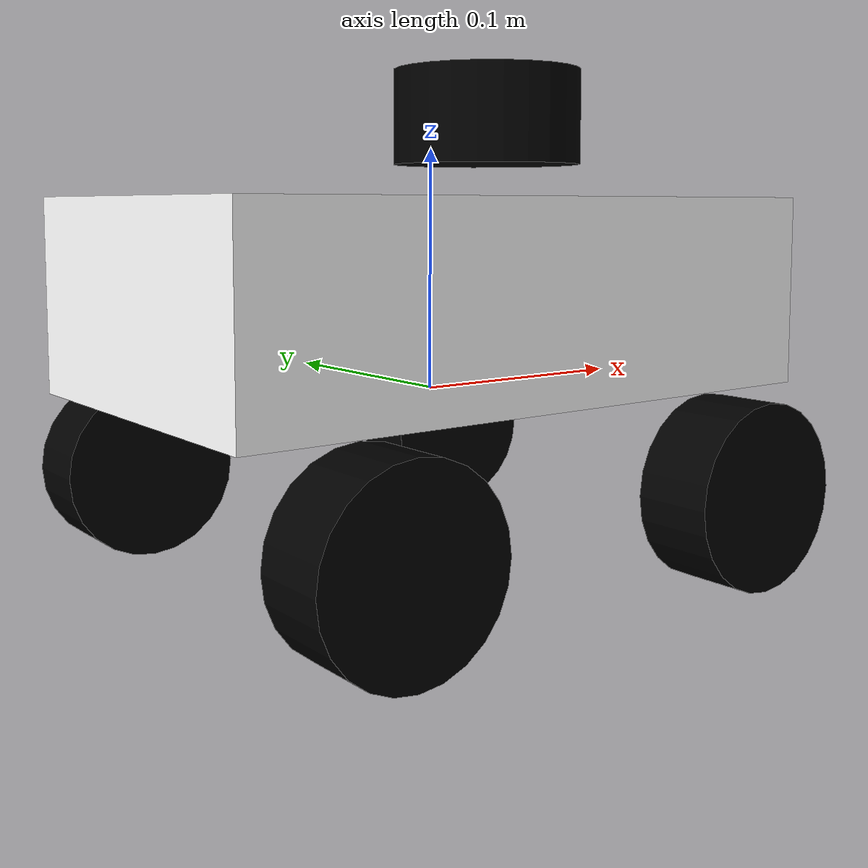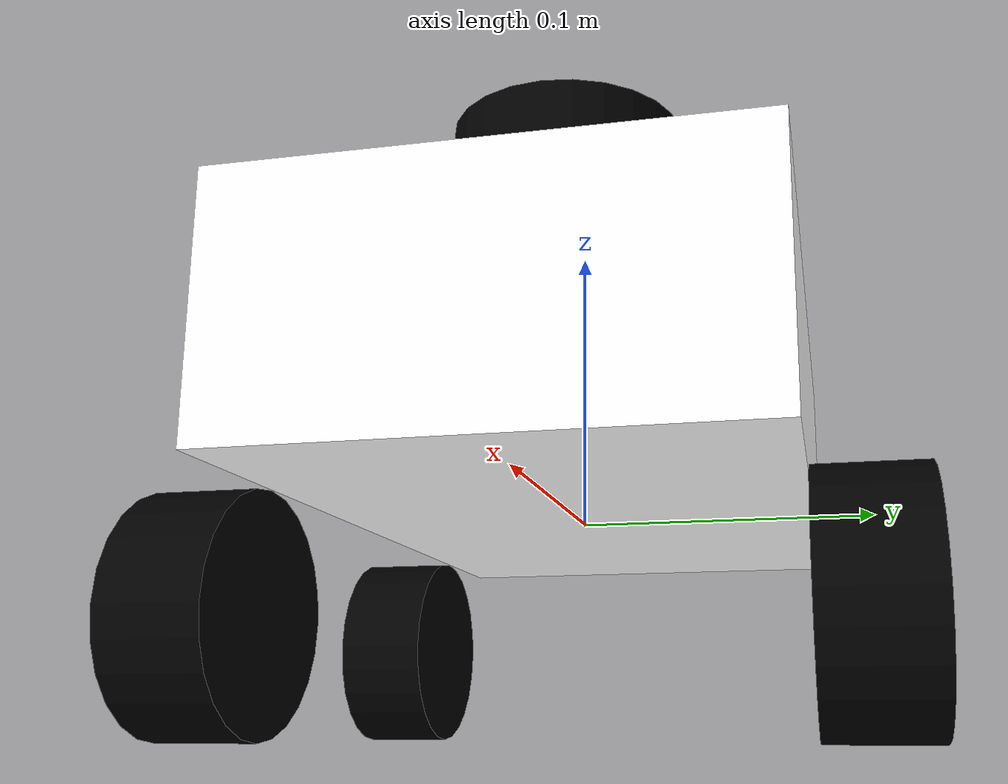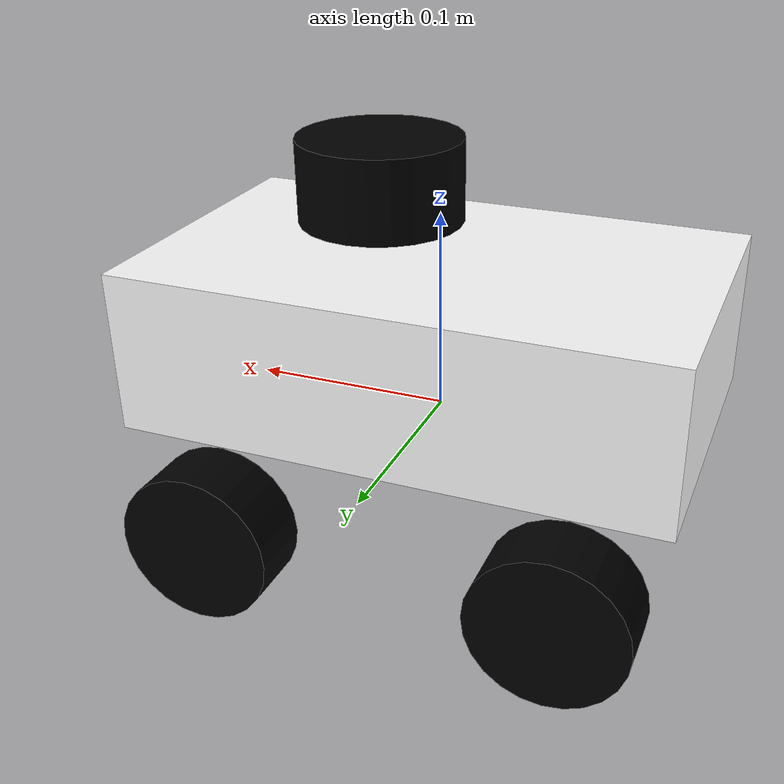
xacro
<?xml version="1.0"?>
<robot xmlns:xacro="http://www.ros.org/wiki/xacro"  name="robot">

    <xacro:arg name="namespace" default=""/>

    <xacro:include filename="robot_core.xacro" />
    <xacro:include filename="gazebo_control_omni.xacro"/>
    <xacro:include filename="lidar.xacro"/>

</robot>

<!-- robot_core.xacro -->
<robot xmlns:xacro="http://www.ros.org/wiki/xacro" >

    <xacro:include filename="inertial_macros.xacro"/>
    <xacro:include filename="materials.xacro"/>

    <!-- BASE LINK -->

    <link name="base_link">

    </link>

    <!-- CHASSIS LINK -->

    <joint name="chassis_joint" type="fixed">
        <parent link="base_link"/>
        <child link="chassis"/>
        <origin xyz="-0.135 0 0"/>
    </joint>

    <link name="chassis">
        <visual>
            <origin xyz="0.135 0 0.04"/>
            <geometry>
                <box size="0.27 0.16 0.08"/>
            </geometry>
            <material name="white"/>
        </visual>
        <collision>
            <origin xyz="0.135 0 0.04"/>
            <geometry>
                <box size="0.27 0.16 0.08"/>
            </geometry>
        </collision>
        <xacro:inertial_box mass="0.5" x="0.27" y="0.16" z="0.08">
            <origin xyz="0.135 0 0.04" rpy="0 0 0" />
        </xacro:inertial_box>
    </link>

    <gazebo reference="chassis">
        <material>Gazebo/White</material>
    </gazebo>

    <!-- REAR LEFT WHEEL LINK -->

    <joint name="rear_left_wheel_joint" type="continuous">
        <parent link="base_link"/>
        <child link="rear_left_wheel"/>
        <origin xyz="-0.090 0.09675 -0.0375" rpy="-${pi/2} 0 0" />
        <axis xyz="0 0 1"/>
    </joint>

    <link name="rear_left_wheel">
        <visual>
            <geometry>
                <cylinder radius="0.0375" length="0.0325"/>
            </geometry>
            <material name="black"/>
        </visual>
        <collision>
            <geometry>
                <cylinder radius="0.0375" length="0.0325"/>
            </geometry>
        </collision>
        <xacro:inertial_cylinder mass="0.1" length="0.0325" radius="0.0375">
            <origin xyz="0 0 0" rpy="0 0 0"/>
        </xacro:inertial_cylinder>
    </link>

    <gazebo reference="rear_left_wheel">
        <material>Gazebo/Black</material>
    </gazebo>

    <!-- REAR RIGHT WHEEL LINK -->

    <joint name="rear_right_wheel_joint" type="continuous">
        <parent link="base_link"/>
        <child link="rear_right_wheel"/>
        <origin xyz="-0.090 -0.09675 -0.0375" rpy="${pi/2} 0 0" />
        <axis xyz="0 0 -1"/>
    </joint>

    <link name="rear_right_wheel">
        <visual>
            <geometry>
                <cylinder radius="0.0375" length="0.0325"/>
            </geometry>
            <material name="black"/>
        </visual>
        <collision>
            <geometry>
                <cylinder radius="0.0375" length="0.0325"/>
            </geometry>
        </collision>
        <xacro:inertial_cylinder mass="0.1" length="0.0325" radius="0.0375">
            <origin xyz="0 0 0" rpy="0 0 0"/>
        </xacro:inertial_cylinder>
    </link>

    <gazebo reference="rear_right_wheel">
        <material>Gazebo/Black</material>
    </gazebo>

       <!-- FRONT LEFT WHEEL LINK -->

    <joint name="front_left_wheel_joint" type="continuous">
        <parent link="base_link"/>
        <child link="front_left_wheel"/>
        <origin xyz="0.080 0.09675 -0.0375" rpy="-${pi/2} 0 0" />
        <axis xyz="0 0 1"/>
    </joint>

    <link name="front_left_wheel">
        <visual>
            <geometry>
                <cylinder radius="0.0375" length="0.0325"/>
            </geometry>
            <material name="black"/>
        </visual>
        <collision>
            <geometry>
                <cylinder radius="0.0375" length="0.0325"/>
            </geometry>
        </collision>
        <xacro:inertial_cylinder mass="0.1" length="0.0325" radius="0.0375">
            <origin xyz="0 0 0" rpy="0 0 0"/>
        </xacro:inertial_cylinder>
    </link>

    <gazebo reference="front_left_wheel">
        <material>Gazebo/Black</material>
    </gazebo>

    <!-- FRONT RIGHT WHEEL LINK -->

    <joint name="front_right_wheel_joint" type="continuous">
        <parent link="base_link"/>
        <child link="front_right_wheel"/>
        <origin xyz="0.080 -0.09675 -0.0375" rpy="${pi/2} 0 0" />
        <axis xyz="0 0 -1"/>
    </joint>

    <link name="front_right_wheel">
        <visual>
            <geometry>
                <cylinder radius="0.0375" length="0.0325"/>
            </geometry>
            <material name="black"/>
        </visual>
        <collision>
            <geometry>
                <cylinder radius="0.0375" length="0.0325"/>
            </geometry>
        </collision>
        <xacro:inertial_cylinder mass="0.1" length="0.0325" radius="0.0375">
            <origin xyz="0 0 0" rpy="0 0 0"/>
        </xacro:inertial_cylinder>
    </link>

    <gazebo reference="front_right_wheel">
        <material>Gazebo/Black</material>
    </gazebo>

</robot>

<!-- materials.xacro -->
<robot xmlns:xacro="http://www.ros.org/wiki/xacro"  name="robot">

    <material name="white">
        <color rgba="1 1 1 1" />
    </material>

    <material name="orange">
        <color rgba="1 0.3 0.1 1"/>
    </material>

    <material name="blue">
        <color rgba="0.2 0.2 1 1"/>
    </material>

    <material name="black">
        <color rgba="0 0 0 1"/>
    </material>

</robot>

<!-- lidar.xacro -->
<robot xmlns:xacro="http://www.ros.org/wiki/xacro">

    <joint name="laser_joint" type="fixed">
        <parent link="chassis"/>
        <child link="laser_frame"/>
        <origin xyz="0.165 0 0.114" rpy="0 0 0"/>
    </joint>

    <link name="laser_frame">
        <visual>
            <geometry>
                <cylinder radius="0.04" length="0.04"/>
            </geometry>
            <material name="black"/>
        </visual>
        <collision>
            <geometry>
                <cylinder radius="0.04" length="0.04"/>
            </geometry>
        </collision>
        <xacro:inertial_cylinder mass="0.1" length="0.04" radius="0.04">
            <origin xyz="0 0 0" rpy="0 0 0"/>
        </xacro:inertial_cylinder>
    </link>

    <gazebo reference="laser_frame">
        <material>Gazebo/Black</material>

        <sensor name="laser" type="ray">
            <pose> 0 0 0 0 0 0 </pose>
            <visualize>true</visualize>
            <update_rate>10</update_rate>
            <ray>
                <scan>
                    <horizontal>
                        <samples>360</samples>
                        <min_angle>-3.14</min_angle>
                        <max_angle>3.14</max_angle>
                    </horizontal>
                </scan>
                <range>
                    <min>0.3</min>
                    <max>10</max>
                </range>
            </ray>
            <plugin name="laser_controller" filename="libgazebo_ros_ray_sensor.so">
                <ros>
                    <argument>~/out:=scan</argument>
                </ros>
                <output_type>sensor_msgs/LaserScan</output_type>
                <frame_name>laser_frame</frame_name>
            </plugin>
        </sensor>
    </gazebo>

</robot>
